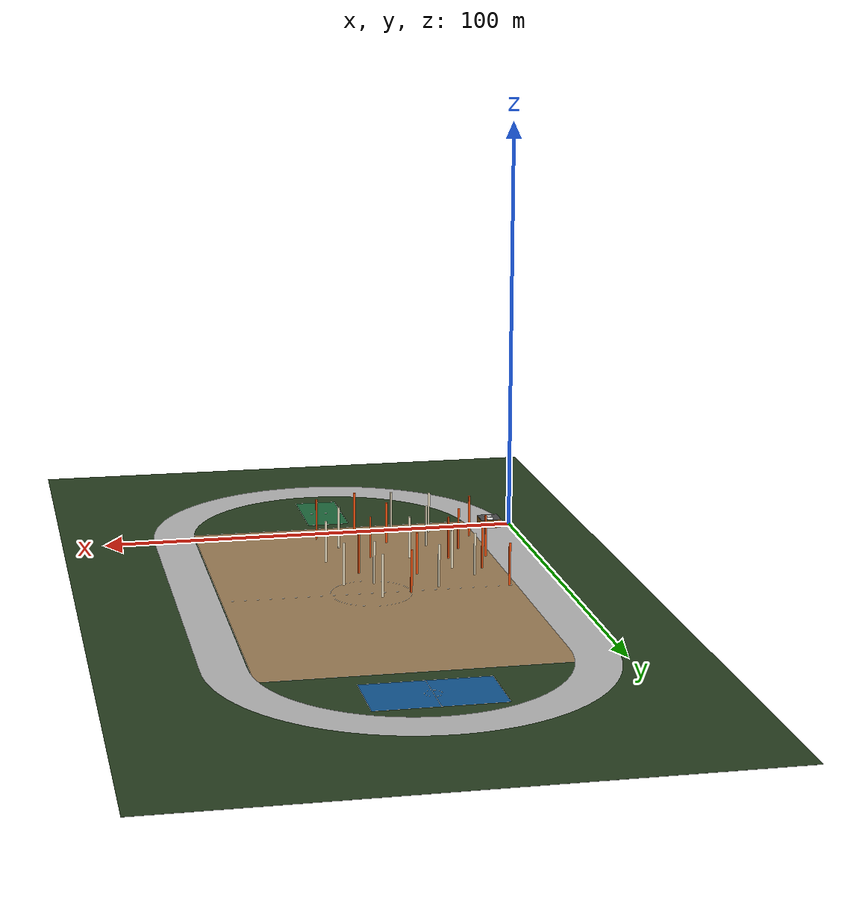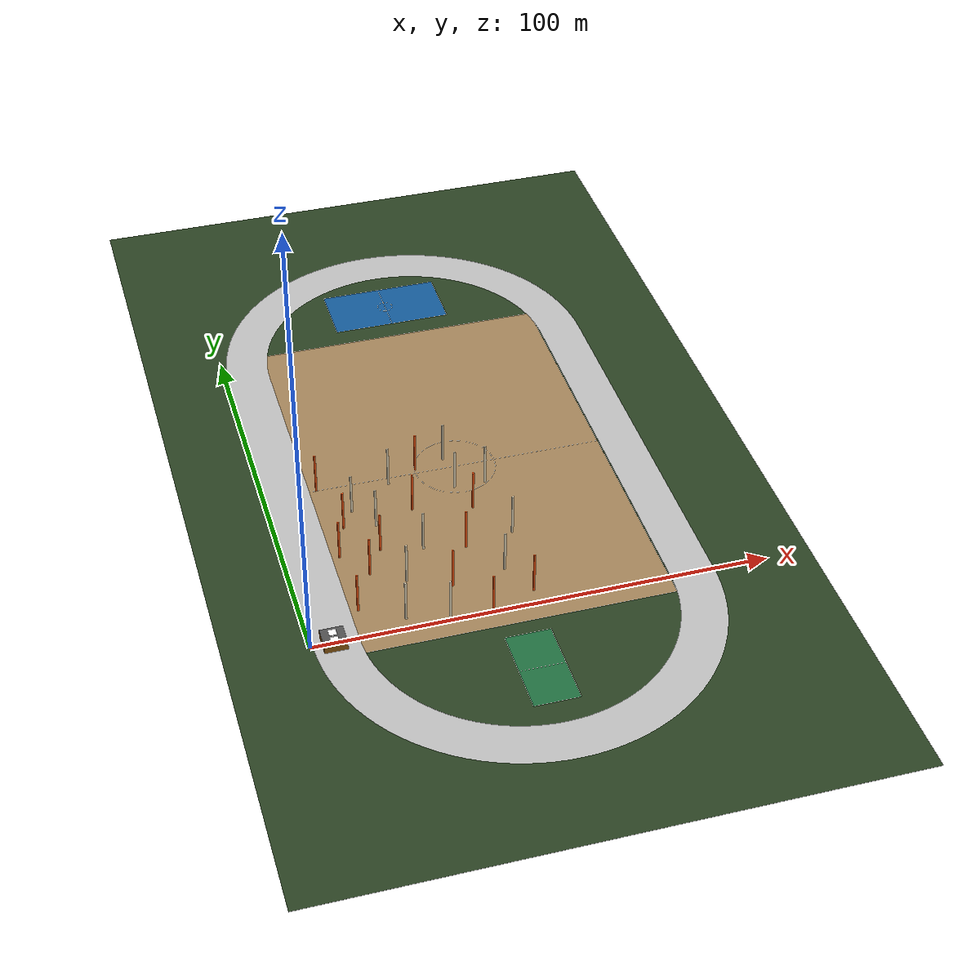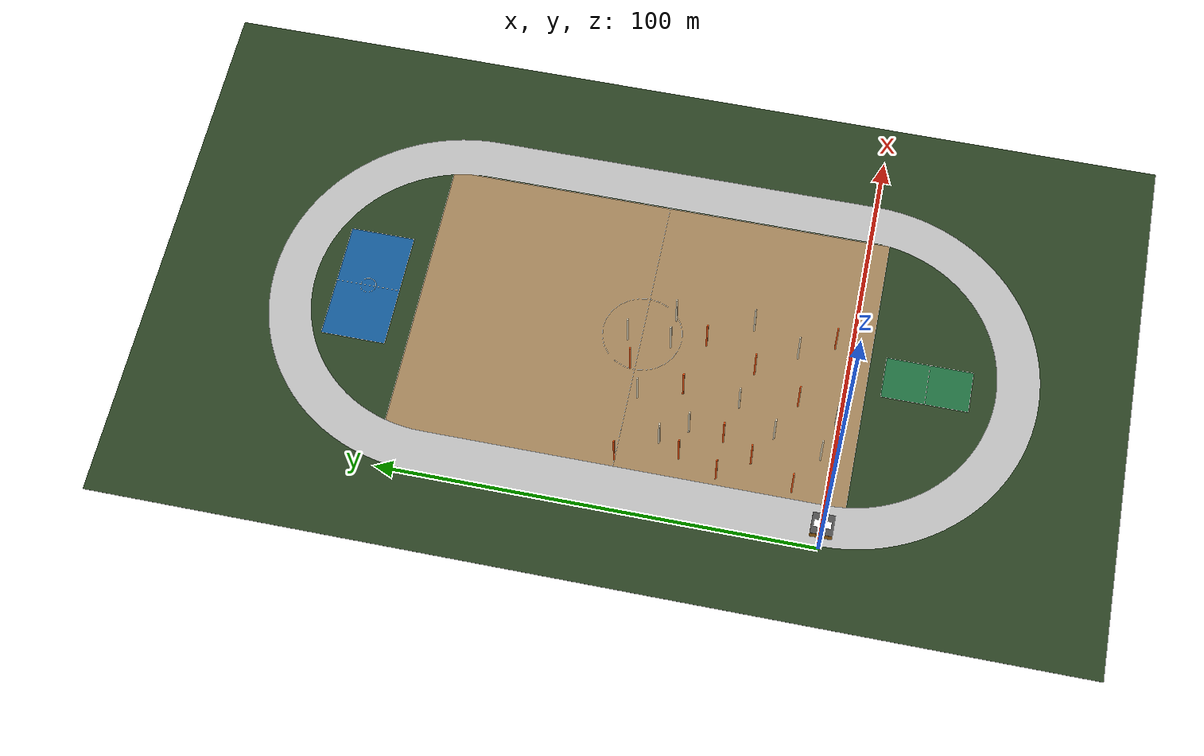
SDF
<?xml version="1.0" encoding="UTF-8"?>
<sdf version="1.9">
  <!-- Real-scale Cheongju University Main Complex Stadium only. -->
  <world name="drone_cju">
    <magnetic_field>6.0e-6 2.3e-5 -4.2e-5</magnetic_field>
    <atmosphere type="adiabatic"/>

    <plugin filename="gz-sim-physics-system" name="gz::sim::systems::Physics"/>
    <plugin filename="gz-sim-user-commands-system" name="gz::sim::systems::UserCommands"/>
    <plugin filename="gz-sim-scene-broadcaster-system" name="gz::sim::systems::SceneBroadcaster"/>
    <plugin filename="gz-sim-contact-system" name="gz::sim::systems::Contact"/>
    <plugin filename="gz-sim-sensors-system" name="gz::sim::systems::Sensors">
      <render_engine>ogre2</render_engine>
    </plugin>
    <plugin filename="gz-sim-imu-system" name="gz::sim::systems::Imu"/>
    <plugin filename="gz-sim-air-pressure-system" name="gz::sim::systems::AirPressure"/>
    <plugin filename="gz-sim-magnetometer-system" name="gz::sim::systems::Magnetometer"/>
    <plugin filename="gz-sim-navsat-system" name="gz::sim::systems::NavSat"/>

    <physics name="2ms" type="ignored">
      <max_step_size>0.002</max_step_size>
      <real_time_factor>1.0</real_time_factor>
      <real_time_update_rate>500</real_time_update_rate>
    </physics>
    <gravity>0 0 -9.8066</gravity>

    <scene>
      <ambient>0.58 0.60 0.62 1</ambient>
      <background>0.62 0.75 0.88 1</background>
      <grid>false</grid>
      <origin_visual>false</origin_visual>
      <sky/>
    </scene>
    <light type="directional" name="sun">
      <pose>100 100 300 0 0 0</pose>
      <diffuse>0.90 0.88 0.82 1</diffuse>
      <specular>0.10 0.10 0.10 1</specular>
      <direction>-0.35 0.25 -0.90</direction>
      <cast_shadows>true</cast_shadows>
    </light>

    <gui fullscreen="0">
      <plugin filename="MinimalScene" name="3D View">
        <gz-gui>
          <title>DRONE CJU - Cheongju University Stadium</title>
          <property type="bool" key="showTitleBar">false</property>
          <property type="string" key="state">docked</property>
        </gz-gui>
        <engine>ogre2</engine>
        <scene>scene</scene>
        <ambient_light>0.58 0.60 0.62</ambient_light>
        <background_color>0.62 0.75 0.88</background_color>
        <camera_pose>110 -20 120 0 0.60 2.10</camera_pose>
        <camera_clip><near>0.2</near><far>1000</far></camera_clip>
      </plugin>
      <plugin filename="GzSceneManager" name="Scene Manager"/>
      <plugin filename="InteractiveViewControl" name="Interactive view control"/>
      <plugin filename="CameraTracking" name="Camera Tracking"/>
      <plugin filename="EntityTree" name="Entity tree"/>
      <plugin filename="WorldControl" name="World control">
        <play_pause>true</play_pause><step>true</step><start_paused>true</start_paused>
      </plugin>
      <plugin filename="WorldStats" name="World stats">
        <sim_time>true</sim_time><real_time_factor>true</real_time_factor>
      </plugin>
    </gui>

    <spherical_coordinates>
      <surface_model>EARTH_WGS84</surface_model>
      <!-- World ENU georeference; the integer stadium map frame is declared
           separately below at the selected OSM endpoint. -->
      <latitude_deg>36.6533752165</latitude_deg>
      <longitude_deg>127.4955858675</longitude_deg>
      <elevation>74.0</elevation>
      <heading_deg>0</heading_deg>
    </spherical_coordinates>

    <!-- Positive mission coordinates from the integer south-west staging
         origin; +x is east-ish and +y north-ish. -->
    <frame name="stadium_endpoint">
      <pose>-10.639652792208 64.993290731978 0 0 0 0.110080031259</pose>
    </frame>
    <frame name="stadium_center">
      <pose relative_to="stadium_endpoint">44 46 0 0 0 0</pose>
    </frame>

    <!-- One low grass/earth pad fills gaps between the requested facilities. -->
    <model name="stadium_ground">
      <static>true</static>
      <pose relative_to="stadium_endpoint">0 0 0 0 0 0</pose>
      <link name="ground">
        <collision name="collision">
          <pose>46 49 -1 0 0 0</pose>
          <geometry><box><size>128 226 2</size></box></geometry>
        </collision>
        <visual name="stadium_ground_surface">
          <pose>46 49 -0.03 0 0 0</pose>
          <cast_shadows>false</cast_shadows>
          <geometry><box><size>128 226 0.04</size></box></geometry>
          <material>
            <ambient>0.16 0.25 0.13 1</ambient>
            <diffuse>0.16 0.25 0.13 1</diffuse>
            <specular>0.02 0.02 0.02 1</specular>
          </material>
        </visual>
      </link>
    </model>

    <include>
      <uri>model://drone_cju_track_stadium</uri>
      <name>drone_cju_track_stadium</name>
      <pose relative_to="stadium_endpoint">0 0 0 0 0 0</pose>
    </include>
    <include>
      <uri>model://drone_cju_track_running_track</uri>
      <name>drone_cju_track_running_track</name>
      <pose relative_to="stadium_endpoint">0 0 0 0 0 0</pose>
    </include>

    <!-- Twenty-five fixed integer centres in x=0..50, y=0..51. -->
    <model name="mission_obstacles">
      <static>true</static>
      <pose relative_to="stadium_endpoint">0 0 0 0 0 0</pose>
      <link name="barriers">
        <collision name="barrier_1_collision"><pose>33 10 5 0 0 0</pose><geometry><box><size>0.45 0.35 10</size></box></geometry></collision>
        <collision name="barrier_2_collision"><pose>18 39 5 0 0 0</pose><geometry><box><size>0.45 0.35 10</size></box></geometry></collision>
        <collision name="barrier_3_collision"><pose>21 25 5 0 0 0</pose><geometry><box><size>0.45 0.35 10</size></box></geometry></collision>
        <collision name="barrier_4_collision"><pose>49 41 5 0 0 0</pose><geometry><box><size>0.45 0.35 10</size></box></geometry></collision>
        <collision name="barrier_5_collision"><pose>31 36 5 0 0 0</pose><geometry><box><size>0.45 0.35 10</size></box></geometry></collision>
        <collision name="barrier_6_collision"><pose>45 12 5 0 0 0</pose><geometry><box><size>0.45 0.35 10</size></box></geometry></collision>
        <collision name="barrier_7_collision"><pose>39 21 5 0 0 0</pose><geometry><box><size>0.45 0.35 10</size></box></geometry></collision>
        <collision name="barrier_8_collision"><pose>42 51 5 0 0 0</pose><geometry><box><size>0.45 0.35 10</size></box></geometry></collision>
        <collision name="barrier_9_collision"><pose>17 18 5 0 0 0</pose><geometry><box><size>0.45 0.35 10</size></box></geometry></collision>
        <collision name="barrier_10_collision"><pose>22 33 5 0 0 0</pose><geometry><box><size>0.45 0.35 10</size></box></geometry></collision>
        <collision name="barrier_11_collision"><pose>44 33 5 0 0 0</pose><geometry><box><size>0.45 0.35 10</size></box></geometry></collision>
        <collision name="barrier_12_collision"><pose>24 14 5 0 0 0</pose><geometry><box><size>0.45 0.35 10</size></box></geometry></collision>
        <collision name="barrier_13_collision"><pose>39 0 5 0 0 0</pose><geometry><box><size>0.45 0.35 10</size></box></geometry></collision>
        <collision name="barrier_14_collision"><pose>30 23 5 0 0 0</pose><geometry><box><size>0.45 0.35 10</size></box></geometry></collision>
        <collision name="barrier_15_collision"><pose>49 4 5 0 0 0</pose><geometry><box><size>0.45 0.35 10</size></box></geometry></collision>
        <collision name="barrier_16_collision"><pose>21 3 5 0 0 0</pose><geometry><box><size>0.45 0.35 10</size></box></geometry></collision>
        <collision name="barrier_17_collision"><pose>15 34 5 0 0 0</pose><geometry><box><size>0.45 0.35 10</size></box></geometry></collision>
        <collision name="barrier_18_collision"><pose>42 41 5 0 0 0</pose><geometry><box><size>0.45 0.35 10</size></box></geometry></collision>
        <collision name="barrier_19_collision"><pose>35 49 5 0 0 0</pose><geometry><box><size>0.45 0.35 10</size></box></geometry></collision>
        <collision name="barrier_20_collision"><pose>28 46 5 0 0 0</pose><geometry><box><size>0.45 0.35 10</size></box></geometry></collision>
        <collision name="barrier_21_collision"><pose>12 48 5 0 0 0</pose><geometry><box><size>0.45 0.35 10</size></box></geometry></collision>
        <collision name="barrier_22_collision"><pose>50 23 5 0 0 0</pose><geometry><box><size>0.45 0.35 10</size></box></geometry></collision>
        <collision name="barrier_23_collision"><pose>12 8 5 0 0 0</pose><geometry><box><size>0.45 0.35 10</size></box></geometry></collision>
        <collision name="barrier_24_collision"><pose>30 1 5 0 0 0</pose><geometry><box><size>0.45 0.35 10</size></box></geometry></collision>
        <collision name="barrier_25_collision"><pose>12 25 5 0 0 0</pose><geometry><box><size>0.45 0.35 10</size></box></geometry></collision>
        <visual name="barrier_1"><pose>33 10 5 0 0 0</pose><geometry><box><size>0.45 0.35 10</size></box></geometry><material><ambient>0.95 0.32 0.05 1</ambient><diffuse>0.95 0.32 0.05 1</diffuse></material></visual>
        <visual name="barrier_2"><pose>18 39 5 0 0 0</pose><geometry><box><size>0.45 0.35 10</size></box></geometry><material><ambient>0.95 0.90 0.78 1</ambient><diffuse>0.95 0.90 0.78 1</diffuse></material></visual>
        <visual name="barrier_3"><pose>21 25 5 0 0 0</pose><geometry><box><size>0.45 0.35 10</size></box></geometry><material><ambient>0.95 0.32 0.05 1</ambient><diffuse>0.95 0.32 0.05 1</diffuse></material></visual>
        <visual name="barrier_4"><pose>49 41 5 0 0 0</pose><geometry><box><size>0.45 0.35 10</size></box></geometry><material><ambient>0.95 0.90 0.78 1</ambient><diffuse>0.95 0.90 0.78 1</diffuse></material></visual>
        <visual name="barrier_5"><pose>31 36 5 0 0 0</pose><geometry><box><size>0.45 0.35 10</size></box></geometry><material><ambient>0.95 0.32 0.05 1</ambient><diffuse>0.95 0.32 0.05 1</diffuse></material></visual>
        <visual name="barrier_6"><pose>45 12 5 0 0 0</pose><geometry><box><size>0.45 0.35 10</size></box></geometry><material><ambient>0.95 0.90 0.78 1</ambient><diffuse>0.95 0.90 0.78 1</diffuse></material></visual>
        <visual name="barrier_7"><pose>39 21 5 0 0 0</pose><geometry><box><size>0.45 0.35 10</size></box></geometry><material><ambient>0.95 0.32 0.05 1</ambient><diffuse>0.95 0.32 0.05 1</diffuse></material></visual>
        <visual name="barrier_8"><pose>42 51 5 0 0 0</pose><geometry><box><size>0.45 0.35 10</size></box></geometry><material><ambient>0.95 0.90 0.78 1</ambient><diffuse>0.95 0.90 0.78 1</diffuse></material></visual>
        <visual name="barrier_9"><pose>17 18 5 0 0 0</pose><geometry><box><size>0.45 0.35 10</size></box></geometry><material><ambient>0.95 0.32 0.05 1</ambient><diffuse>0.95 0.32 0.05 1</diffuse></material></visual>
        <visual name="barrier_10"><pose>22 33 5 0 0 0</pose><geometry><box><size>0.45 0.35 10</size></box></geometry><material><ambient>0.95 0.90 0.78 1</ambient><diffuse>0.95 0.90 0.78 1</diffuse></material></visual>
        <visual name="barrier_11"><pose>44 33 5 0 0 0</pose><geometry><box><size>0.45 0.35 10</size></box></geometry><material><ambient>0.95 0.32 0.05 1</ambient><diffuse>0.95 0.32 0.05 1</diffuse></material></visual>
        <visual name="barrier_12"><pose>24 14 5 0 0 0</pose><geometry><box><size>0.45 0.35 10</size></box></geometry><material><ambient>0.95 0.90 0.78 1</ambient><diffuse>0.95 0.90 0.78 1</diffuse></material></visual>
        <visual name="barrier_13"><pose>39 0 5 0 0 0</pose><geometry><box><size>0.45 0.35 10</size></box></geometry><material><ambient>0.95 0.32 0.05 1</ambient><diffuse>0.95 0.32 0.05 1</diffuse></material></visual>
        <visual name="barrier_14"><pose>30 23 5 0 0 0</pose><geometry><box><size>0.45 0.35 10</size></box></geometry><material><ambient>0.95 0.90 0.78 1</ambient><diffuse>0.95 0.90 0.78 1</diffuse></material></visual>
        <visual name="barrier_15"><pose>49 4 5 0 0 0</pose><geometry><box><size>0.45 0.35 10</size></box></geometry><material><ambient>0.95 0.32 0.05 1</ambient><diffuse>0.95 0.32 0.05 1</diffuse></material></visual>
        <visual name="barrier_16"><pose>21 3 5 0 0 0</pose><geometry><box><size>0.45 0.35 10</size></box></geometry><material><ambient>0.95 0.90 0.78 1</ambient><diffuse>0.95 0.90 0.78 1</diffuse></material></visual>
        <visual name="barrier_17"><pose>15 34 5 0 0 0</pose><geometry><box><size>0.45 0.35 10</size></box></geometry><material><ambient>0.95 0.32 0.05 1</ambient><diffuse>0.95 0.32 0.05 1</diffuse></material></visual>
        <visual name="barrier_18"><pose>42 41 5 0 0 0</pose><geometry><box><size>0.45 0.35 10</size></box></geometry><material><ambient>0.95 0.90 0.78 1</ambient><diffuse>0.95 0.90 0.78 1</diffuse></material></visual>
        <visual name="barrier_19"><pose>35 49 5 0 0 0</pose><geometry><box><size>0.45 0.35 10</size></box></geometry><material><ambient>0.95 0.32 0.05 1</ambient><diffuse>0.95 0.32 0.05 1</diffuse></material></visual>
        <visual name="barrier_20"><pose>28 46 5 0 0 0</pose><geometry><box><size>0.45 0.35 10</size></box></geometry><material><ambient>0.95 0.90 0.78 1</ambient><diffuse>0.95 0.90 0.78 1</diffuse></material></visual>
        <visual name="barrier_21"><pose>12 48 5 0 0 0</pose><geometry><box><size>0.45 0.35 10</size></box></geometry><material><ambient>0.95 0.32 0.05 1</ambient><diffuse>0.95 0.32 0.05 1</diffuse></material></visual>
        <visual name="barrier_22"><pose>50 23 5 0 0 0</pose><geometry><box><size>0.45 0.35 10</size></box></geometry><material><ambient>0.95 0.90 0.78 1</ambient><diffuse>0.95 0.90 0.78 1</diffuse></material></visual>
        <visual name="barrier_23"><pose>12 8 5 0 0 0</pose><geometry><box><size>0.45 0.35 10</size></box></geometry><material><ambient>0.95 0.32 0.05 1</ambient><diffuse>0.95 0.32 0.05 1</diffuse></material></visual>
        <visual name="barrier_24"><pose>30 1 5 0 0 0</pose><geometry><box><size>0.45 0.35 10</size></box></geometry><material><ambient>0.95 0.90 0.78 1</ambient><diffuse>0.95 0.90 0.78 1</diffuse></material></visual>
        <visual name="barrier_25"><pose>12 25 5 0 0 0</pose><geometry><box><size>0.45 0.35 10</size></box></geometry><material><ambient>0.95 0.32 0.05 1</ambient><diffuse>0.95 0.32 0.05 1</diffuse></material></visual>
      </link>
    </model>

    <frame name="drone_spawn"><pose relative_to="stadium_endpoint">5 0 2.051 0 0 1.570796326795</pose></frame>
    <frame name="trailer_spawn"><pose relative_to="stadium_endpoint">5 0 0 0 0 1.570796326795</pose></frame>
    <include>
      <uri>model://moving_platform_aruco_velocity</uri>
      <name>trailer</name>
      <pose relative_to="stadium_endpoint">5 0 0 0 0 1.570796326795</pose>
    </include>

    <!-- PX4 SITL dynamically creates the x500 on the trailer deck. -->
  </world>
</sdf>

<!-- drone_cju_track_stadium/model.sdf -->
<sdf version="1.9">
  <!-- Generated requested facilities only; markings are visual-only. -->
  <model name="drone_cju_track_stadium">
    <static>true</static>
    <link name="stadium_link">
      <visual name="stadium_field">
        <pose>44.0000 48.0000 0.0000 0 0 0.000000</pose>
        <cast_shadows>false</cast_shadows>
        <geometry><box><size>68.0000 105.0000 0.0200</size></box></geometry>
        <material>
          <ambient>0.62 0.5 0.34 1.0</ambient>
          <diffuse>0.62 0.5 0.34 1.0</diffuse>
          <specular>0.04 0.04 0.04 1</specular>
        </material>
      </visual>
      <visual name="basketball_court">
        <pose>44.0000 113.0000 0.0000 0 0 0.000000</pose>
        <cast_shadows>false</cast_shadows>
        <geometry><box><size>28.0000 15.0000 0.0200</size></box></geometry>
        <material>
          <ambient>0.07 0.34 0.58 1.0</ambient>
          <diffuse>0.07 0.34 0.58 1.0</diffuse>
          <specular>0.04 0.04 0.04 1</specular>
        </material>
      </visual>
      <visual name="jokgu_court">
        <pose>44.0000 -18.0000 0.0000 0 0 0.000000</pose>
        <cast_shadows>false</cast_shadows>
        <geometry><box><size>10.0000 20.0000 0.0200</size></box></geometry>
        <material>
          <ambient>0.12 0.42 0.24 1.0</ambient>
          <diffuse>0.12 0.42 0.24 1.0</diffuse>
          <specular>0.04 0.04 0.04 1</specular>
        </material>
      </visual>
      <visual name="stadium_field_line_east">
        <pose>78.0000 48.0000 0.0120 0 0 0.000000</pose>
        <cast_shadows>false</cast_shadows>
        <geometry><box><size>0.0800 105.0000 0.0040</size></box></geometry>
        <material>
          <ambient>0.96 0.96 0.93 1.0</ambient>
          <diffuse>0.96 0.96 0.93 1.0</diffuse>
          <specular>0.04 0.04 0.04 1</specular>
        </material>
      </visual>
      <visual name="stadium_field_line_west">
        <pose>10.0000 48.0000 0.0120 0 0 0.000000</pose>
        <cast_shadows>false</cast_shadows>
        <geometry><box><size>0.0800 105.0000 0.0040</size></box></geometry>
        <material>
          <ambient>0.96 0.96 0.93 1.0</ambient>
          <diffuse>0.96 0.96 0.93 1.0</diffuse>
          <specular>0.04 0.04 0.04 1</specular>
        </material>
      </visual>
      <visual name="stadium_field_line_north">
        <pose>44.0000 100.5000 0.0120 0 0 0.000000</pose>
        <cast_shadows>false</cast_shadows>
        <geometry><box><size>68.0000 0.0800 0.0040</size></box></geometry>
        <material>
          <ambient>0.96 0.96 0.93 1.0</ambient>
          <diffuse>0.96 0.96 0.93 1.0</diffuse>
          <specular>0.04 0.04 0.04 1</specular>
        </material>
      </visual>
      <visual name="stadium_field_line_south">
        <pose>44.0000 -4.5000 0.0120 0 0 0.000000</pose>
        <cast_shadows>false</cast_shadows>
        <geometry><box><size>68.0000 0.0800 0.0040</size></box></geometry>
        <material>
          <ambient>0.96 0.96 0.93 1.0</ambient>
          <diffuse>0.96 0.96 0.93 1.0</diffuse>
          <specular>0.04 0.04 0.04 1</specular>
        </material>
      </visual>
      <visual name="stadium_field_line_halfway">
        <pose>44.0000 48.0000 0.0120 0 0 0.000000</pose>
        <cast_shadows>false</cast_shadows>
        <geometry><box><size>68.0000 0.0800 0.0040</size></box></geometry>
        <material>
          <ambient>0.96 0.96 0.93 1.0</ambient>
          <diffuse>0.96 0.96 0.93 1.0</diffuse>
          <specular>0.04 0.04 0.04 1</specular>
        </material>
      </visual>
      <visual name="stadium_field_line_circle_0">
        <pose>53.0717 49.1943 0.0120 0 0 1.701696</pose>
        <cast_shadows>false</cast_shadows>
        <geometry><box><size>2.4603 0.0800 0.0040</size></box></geometry>
        <material>
          <ambient>0.96 0.96 0.93 1.0</ambient>
          <diffuse>0.96 0.96 0.93 1.0</diffuse>
          <specular>0.04 0.04 0.04 1</specular>
        </material>
      </visual>
      <visual name="stadium_field_line_circle_1">
        <pose>52.4535 51.5016 0.0120 0 0 1.963495</pose>
        <cast_shadows>false</cast_shadows>
        <geometry><box><size>2.4603 0.0800 0.0040</size></box></geometry>
        <material>
          <ambient>0.96 0.96 0.93 1.0</ambient>
          <diffuse>0.96 0.96 0.93 1.0</diffuse>
          <specular>0.04 0.04 0.04 1</specular>
        </material>
      </visual>
      <visual name="stadium_field_line_circle_2">
        <pose>51.2592 53.5702 0.0120 0 0 2.225295</pose>
        <cast_shadows>false</cast_shadows>
        <geometry><box><size>2.4603 0.0800 0.0040</size></box></geometry>
        <material>
          <ambient>0.96 0.96 0.93 1.0</ambient>
          <diffuse>0.96 0.96 0.93 1.0</diffuse>
          <specular>0.04 0.04 0.04 1</specular>
        </material>
      </visual>
      <visual name="stadium_field_line_circle_3">
        <pose>49.5702 55.2592 0.0120 0 0 2.487094</pose>
        <cast_shadows>false</cast_shadows>
        <geometry><box><size>2.4603 0.0800 0.0040</size></box></geometry>
        <material>
          <ambient>0.96 0.96 0.93 1.0</ambient>
          <diffuse>0.96 0.96 0.93 1.0</diffuse>
          <specular>0.04 0.04 0.04 1</specular>
        </material>
      </visual>
      <visual name="stadium_field_line_circle_4">
        <pose>47.5016 56.4535 0.0120 0 0 2.748894</pose>
        <cast_shadows>false</cast_shadows>
        <geometry><box><size>2.4603 0.0800 0.0040</size></box></geometry>
        <material>
          <ambient>0.96 0.96 0.93 1.0</ambient>
          <diffuse>0.96 0.96 0.93 1.0</diffuse>
          <specular>0.04 0.04 0.04 1</specular>
        </material>
      </visual>
      <visual name="stadium_field_line_circle_5">
        <pose>45.1943 57.0717 0.0120 0 0 3.010693</pose>
        <cast_shadows>false</cast_shadows>
        <geometry><box><size>2.4603 0.0800 0.0040</size></box></geometry>
        <material>
          <ambient>0.96 0.96 0.93 1.0</ambient>
          <diffuse>0.96 0.96 0.93 1.0</diffuse>
          <specular>0.04 0.04 0.04 1</specular>
        </material>
      </visual>
      <visual name="stadium_field_line_circle_6">
        <pose>42.8057 57.0717 0.0120 0 0 3.272492</pose>
        <cast_shadows>false</cast_shadows>
        <geometry><box><size>2.4603 0.0800 0.0040</size></box></geometry>
        <material>
          <ambient>0.96 0.96 0.93 1.0</ambient>
          <diffuse>0.96 0.96 0.93 1.0</diffuse>
          <specular>0.04 0.04 0.04 1</specular>
        </material>
      </visual>
      <visual name="stadium_field_line_circle_7">
        <pose>40.4984 56.4535 0.0120 0 0 3.534292</pose>
        <cast_shadows>false</cast_shadows>
        <geometry><box><size>2.4603 0.0800 0.0040</size></box></geometry>
        <material>
          <ambient>0.96 0.96 0.93 1.0</ambient>
          <diffuse>0.96 0.96 0.93 1.0</diffuse>
          <specular>0.04 0.04 0.04 1</specular>
        </material>
      </visual>
      <visual name="stadium_field_line_circle_8">
        <pose>38.4298 55.2592 0.0120 0 0 3.796091</pose>
        <cast_shadows>false</cast_shadows>
        <geometry><box><size>2.4603 0.0800 0.0040</size></box></geometry>
        <material>
          <ambient>0.96 0.96 0.93 1.0</ambient>
          <diffuse>0.96 0.96 0.93 1.0</diffuse>
          <specular>0.04 0.04 0.04 1</specular>
        </material>
      </visual>
      <visual name="stadium_field_line_circle_9">
        <pose>36.7408 53.5702 0.0120 0 0 4.057891</pose>
        <cast_shadows>false</cast_shadows>
        <geometry><box><size>2.4603 0.0800 0.0040</size></box></geometry>
        <material>
          <ambient>0.96 0.96 0.93 1.0</ambient>
          <diffuse>0.96 0.96 0.93 1.0</diffuse>
          <specular>0.04 0.04 0.04 1</specular>
        </material>
      </visual>
      <visual name="stadium_field_line_circle_10">
        <pose>35.5465 51.5016 0.0120 0 0 4.319690</pose>
        <cast_shadows>false</cast_shadows>
        <geometry><box><size>2.4603 0.0800 0.0040</size></box></geometry>
        <material>
          <ambient>0.96 0.96 0.93 1.0</ambient>
          <diffuse>0.96 0.96 0.93 1.0</diffuse>
          <specular>0.04 0.04 0.04 1</specular>
        </material>
      </visual>
      <visual name="stadium_field_line_circle_11">
        <pose>34.9283 49.1943 0.0120 0 0 4.581489</pose>
        <cast_shadows>false</cast_shadows>
        <geometry><box><size>2.4603 0.0800 0.0040</size></box></geometry>
        <material>
          <ambient>0.96 0.96 0.93 1.0</ambient>
          <diffuse>0.96 0.96 0.93 1.0</diffuse>
          <specular>0.04 0.04 0.04 1</specular>
        </material>
      </visual>
      <visual name="stadium_field_line_circle_12">
        <pose>34.9283 46.8057 0.0120 0 0 4.843289</pose>
        <cast_shadows>false</cast_shadows>
        <geometry><box><size>2.4603 0.0800 0.0040</size></box></geometry>
        <material>
          <ambient>0.96 0.96 0.93 1.0</ambient>
          <diffuse>0.96 0.96 0.93 1.0</diffuse>
          <specular>0.04 0.04 0.04 1</specular>
        </material>
      </visual>
      <visual name="stadium_field_line_circle_13">
        <pose>35.5465 44.4984 0.0120 0 0 5.105088</pose>
        <cast_shadows>false</cast_shadows>
        <geometry><box><size>2.4603 0.0800 0.0040</size></box></geometry>
        <material>
          <ambient>0.96 0.96 0.93 1.0</ambient>
          <diffuse>0.96 0.96 0.93 1.0</diffuse>
          <specular>0.04 0.04 0.04 1</specular>
        </material>
      </visual>
      <visual name="stadium_field_line_circle_14">
        <pose>36.7408 42.4298 0.0120 0 0 5.366887</pose>
        <cast_shadows>false</cast_shadows>
        <geometry><box><size>2.4603 0.0800 0.0040</size></box></geometry>
        <material>
          <ambient>0.96 0.96 0.93 1.0</ambient>
          <diffuse>0.96 0.96 0.93 1.0</diffuse>
          <specular>0.04 0.04 0.04 1</specular>
        </material>
      </visual>
      <visual name="stadium_field_line_circle_15">
        <pose>38.4298 40.7408 0.0120 0 0 5.628687</pose>
        <cast_shadows>false</cast_shadows>
        <geometry><box><size>2.4603 0.0800 0.0040</size></box></geometry>
        <material>
          <ambient>0.96 0.96 0.93 1.0</ambient>
          <diffuse>0.96 0.96 0.93 1.0</diffuse>
          <specular>0.04 0.04 0.04 1</specular>
        </material>
      </visual>
      <visual name="stadium_field_line_circle_16">
        <pose>40.4984 39.5465 0.0120 0 0 5.890486</pose>
        <cast_shadows>false</cast_shadows>
        <geometry><box><size>2.4603 0.0800 0.0040</size></box></geometry>
        <material>
          <ambient>0.96 0.96 0.93 1.0</ambient>
          <diffuse>0.96 0.96 0.93 1.0</diffuse>
          <specular>0.04 0.04 0.04 1</specular>
        </material>
      </visual>
      <visual name="stadium_field_line_circle_17">
        <pose>42.8057 38.9283 0.0120 0 0 6.152286</pose>
        <cast_shadows>false</cast_shadows>
        <geometry><box><size>2.4603 0.0800 0.0040</size></box></geometry>
        <material>
          <ambient>0.96 0.96 0.93 1.0</ambient>
          <diffuse>0.96 0.96 0.93 1.0</diffuse>
          <specular>0.04 0.04 0.04 1</specular>
        </material>
      </visual>
      <visual name="stadium_field_line_circle_18">
        <pose>45.1943 38.9283 0.0120 0 0 6.414085</pose>
        <cast_shadows>false</cast_shadows>
        <geometry><box><size>2.4603 0.0800 0.0040</size></box></geometry>
        <material>
          <ambient>0.96 0.96 0.93 1.0</ambient>
          <diffuse>0.96 0.96 0.93 1.0</diffuse>
          <specular>0.04 0.04 0.04 1</specular>
        </material>
      </visual>
      <visual name="stadium_field_line_circle_19">
        <pose>47.5016 39.5465 0.0120 0 0 6.675884</pose>
        <cast_shadows>false</cast_shadows>
        <geometry><box><size>2.4603 0.0800 0.0040</size></box></geometry>
        <material>
          <ambient>0.96 0.96 0.93 1.0</ambient>
          <diffuse>0.96 0.96 0.93 1.0</diffuse>
          <specular>0.04 0.04 0.04 1</specular>
        </material>
      </visual>
      <visual name="stadium_field_line_circle_20">
        <pose>49.5702 40.7408 0.0120 0 0 6.937684</pose>
        <cast_shadows>false</cast_shadows>
        <geometry><box><size>2.4603 0.0800 0.0040</size></box></geometry>
        <material>
          <ambient>0.96 0.96 0.93 1.0</ambient>
          <diffuse>0.96 0.96 0.93 1.0</diffuse>
          <specular>0.04 0.04 0.04 1</specular>
        </material>
      </visual>
      <visual name="stadium_field_line_circle_21">
        <pose>51.2592 42.4298 0.0120 0 0 7.199483</pose>
        <cast_shadows>false</cast_shadows>
        <geometry><box><size>2.4603 0.0800 0.0040</size></box></geometry>
        <material>
          <ambient>0.96 0.96 0.93 1.0</ambient>
          <diffuse>0.96 0.96 0.93 1.0</diffuse>
          <specular>0.04 0.04 0.04 1</specular>
        </material>
      </visual>
      <visual name="stadium_field_line_circle_22">
        <pose>52.4535 44.4984 0.0120 0 0 7.461283</pose>
        <cast_shadows>false</cast_shadows>
        <geometry><box><size>2.4603 0.0800 0.0040</size></box></geometry>
        <material>
          <ambient>0.96 0.96 0.93 1.0</ambient>
          <diffuse>0.96 0.96 0.93 1.0</diffuse>
          <specular>0.04 0.04 0.04 1</specular>
        </material>
      </visual>
      <visual name="stadium_field_line_circle_23">
        <pose>53.0717 46.8057 0.0120 0 0 7.723082</pose>
        <cast_shadows>false</cast_shadows>
        <geometry><box><size>2.4603 0.0800 0.0040</size></box></geometry>
        <material>
          <ambient>0.96 0.96 0.93 1.0</ambient>
          <diffuse>0.96 0.96 0.93 1.0</diffuse>
          <specular>0.04 0.04 0.04 1</specular>
        </material>
      </visual>
      <visual name="basketball_court_line_east">
        <pose>58.0000 113.0000 0.0120 0 0 0.000000</pose>
        <cast_shadows>false</cast_shadows>
        <geometry><box><size>0.0800 15.0000 0.0040</size></box></geometry>
        <material>
          <ambient>0.96 0.96 0.93 1.0</ambient>
          <diffuse>0.96 0.96 0.93 1.0</diffuse>
          <specular>0.04 0.04 0.04 1</specular>
        </material>
      </visual>
      <visual name="basketball_court_line_west">
        <pose>30.0000 113.0000 0.0120 0 0 0.000000</pose>
        <cast_shadows>false</cast_shadows>
        <geometry><box><size>0.0800 15.0000 0.0040</size></box></geometry>
        <material>
          <ambient>0.96 0.96 0.93 1.0</ambient>
          <diffuse>0.96 0.96 0.93 1.0</diffuse>
          <specular>0.04 0.04 0.04 1</specular>
        </material>
      </visual>
      <visual name="basketball_court_line_north">
        <pose>44.0000 120.5000 0.0120 0 0 0.000000</pose>
        <cast_shadows>false</cast_shadows>
        <geometry><box><size>28.0000 0.0800 0.0040</size></box></geometry>
        <material>
          <ambient>0.96 0.96 0.93 1.0</ambient>
          <diffuse>0.96 0.96 0.93 1.0</diffuse>
          <specular>0.04 0.04 0.04 1</specular>
        </material>
      </visual>
      <visual name="basketball_court_line_south">
        <pose>44.0000 105.5000 0.0120 0 0 0.000000</pose>
        <cast_shadows>false</cast_shadows>
        <geometry><box><size>28.0000 0.0800 0.0040</size></box></geometry>
        <material>
          <ambient>0.96 0.96 0.93 1.0</ambient>
          <diffuse>0.96 0.96 0.93 1.0</diffuse>
          <specular>0.04 0.04 0.04 1</specular>
        </material>
      </visual>
      <visual name="basketball_court_line_halfway">
        <pose>44.0000 113.0000 0.0120 0 0 0.000000</pose>
        <cast_shadows>false</cast_shadows>
        <geometry><box><size>0.0800 15.0000 0.0040</size></box></geometry>
        <material>
          <ambient>0.96 0.96 0.93 1.0</ambient>
          <diffuse>0.96 0.96 0.93 1.0</diffuse>
          <specular>0.04 0.04 0.04 1</specular>
        </material>
      </visual>
      <visual name="basketball_court_line_circle_0">
        <pose>45.7654 113.3512 0.0120 0 0 1.767146</pose>
        <cast_shadows>false</cast_shadows>
        <geometry><box><size>0.7234 0.0800 0.0040</size></box></geometry>
        <material>
          <ambient>0.96 0.96 0.93 1.0</ambient>
          <diffuse>0.96 0.96 0.93 1.0</diffuse>
          <specular>0.04 0.04 0.04 1</specular>
        </material>
      </visual>
      <visual name="basketball_court_line_circle_1">
        <pose>45.4966 114.0000 0.0120 0 0 2.159845</pose>
        <cast_shadows>false</cast_shadows>
        <geometry><box><size>0.7234 0.0800 0.0040</size></box></geometry>
        <material>
          <ambient>0.96 0.96 0.93 1.0</ambient>
          <diffuse>0.96 0.96 0.93 1.0</diffuse>
          <specular>0.04 0.04 0.04 1</specular>
        </material>
      </visual>
      <visual name="basketball_court_line_circle_2">
        <pose>45.0000 114.4966 0.0120 0 0 2.552544</pose>
        <cast_shadows>false</cast_shadows>
        <geometry><box><size>0.7234 0.0800 0.0040</size></box></geometry>
        <material>
          <ambient>0.96 0.96 0.93 1.0</ambient>
          <diffuse>0.96 0.96 0.93 1.0</diffuse>
          <specular>0.04 0.04 0.04 1</specular>
        </material>
      </visual>
      <visual name="basketball_court_line_circle_3">
        <pose>44.3512 114.7654 0.0120 0 0 2.945243</pose>
        <cast_shadows>false</cast_shadows>
        <geometry><box><size>0.7234 0.0800 0.0040</size></box></geometry>
        <material>
          <ambient>0.96 0.96 0.93 1.0</ambient>
          <diffuse>0.96 0.96 0.93 1.0</diffuse>
          <specular>0.04 0.04 0.04 1</specular>
        </material>
      </visual>
      <visual name="basketball_court_line_circle_4">
        <pose>43.6488 114.7654 0.0120 0 0 3.337942</pose>
        <cast_shadows>false</cast_shadows>
        <geometry><box><size>0.7234 0.0800 0.0040</size></box></geometry>
        <material>
          <ambient>0.96 0.96 0.93 1.0</ambient>
          <diffuse>0.96 0.96 0.93 1.0</diffuse>
          <specular>0.04 0.04 0.04 1</specular>
        </material>
      </visual>
      <visual name="basketball_court_line_circle_5">
        <pose>43.0000 114.4966 0.0120 0 0 3.730641</pose>
        <cast_shadows>false</cast_shadows>
        <geometry><box><size>0.7234 0.0800 0.0040</size></box></geometry>
        <material>
          <ambient>0.96 0.96 0.93 1.0</ambient>
          <diffuse>0.96 0.96 0.93 1.0</diffuse>
          <specular>0.04 0.04 0.04 1</specular>
        </material>
      </visual>
      <visual name="basketball_court_line_circle_6">
        <pose>42.5034 114.0000 0.0120 0 0 4.123340</pose>
        <cast_shadows>false</cast_shadows>
        <geometry><box><size>0.7234 0.0800 0.0040</size></box></geometry>
        <material>
          <ambient>0.96 0.96 0.93 1.0</ambient>
          <diffuse>0.96 0.96 0.93 1.0</diffuse>
          <specular>0.04 0.04 0.04 1</specular>
        </material>
      </visual>
      <visual name="basketball_court_line_circle_7">
        <pose>42.2346 113.3512 0.0120 0 0 4.516039</pose>
        <cast_shadows>false</cast_shadows>
        <geometry><box><size>0.7234 0.0800 0.0040</size></box></geometry>
        <material>
          <ambient>0.96 0.96 0.93 1.0</ambient>
          <diffuse>0.96 0.96 0.93 1.0</diffuse>
          <specular>0.04 0.04 0.04 1</specular>
        </material>
      </visual>
      <visual name="basketball_court_line_circle_8">
        <pose>42.2346 112.6488 0.0120 0 0 4.908739</pose>
        <cast_shadows>false</cast_shadows>
        <geometry><box><size>0.7234 0.0800 0.0040</size></box></geometry>
        <material>
          <ambient>0.96 0.96 0.93 1.0</ambient>
          <diffuse>0.96 0.96 0.93 1.0</diffuse>
          <specular>0.04 0.04 0.04 1</specular>
        </material>
      </visual>
      <visual name="basketball_court_line_circle_9">
        <pose>42.5034 112.0000 0.0120 0 0 5.301438</pose>
        <cast_shadows>false</cast_shadows>
        <geometry><box><size>0.7234 0.0800 0.0040</size></box></geometry>
        <material>
          <ambient>0.96 0.96 0.93 1.0</ambient>
          <diffuse>0.96 0.96 0.93 1.0</diffuse>
          <specular>0.04 0.04 0.04 1</specular>
        </material>
      </visual>
      <visual name="basketball_court_line_circle_10">
        <pose>43.0000 111.5034 0.0120 0 0 5.694137</pose>
        <cast_shadows>false</cast_shadows>
        <geometry><box><size>0.7234 0.0800 0.0040</size></box></geometry>
        <material>
          <ambient>0.96 0.96 0.93 1.0</ambient>
          <diffuse>0.96 0.96 0.93 1.0</diffuse>
          <specular>0.04 0.04 0.04 1</specular>
        </material>
      </visual>
      <visual name="basketball_court_line_circle_11">
        <pose>43.6488 111.2346 0.0120 0 0 6.086836</pose>
        <cast_shadows>false</cast_shadows>
        <geometry><box><size>0.7234 0.0800 0.0040</size></box></geometry>
        <material>
          <ambient>0.96 0.96 0.93 1.0</ambient>
          <diffuse>0.96 0.96 0.93 1.0</diffuse>
          <specular>0.04 0.04 0.04 1</specular>
        </material>
      </visual>
      <visual name="basketball_court_line_circle_12">
        <pose>44.3512 111.2346 0.0120 0 0 6.479535</pose>
        <cast_shadows>false</cast_shadows>
        <geometry><box><size>0.7234 0.0800 0.0040</size></box></geometry>
        <material>
          <ambient>0.96 0.96 0.93 1.0</ambient>
          <diffuse>0.96 0.96 0.93 1.0</diffuse>
          <specular>0.04 0.04 0.04 1</specular>
        </material>
      </visual>
      <visual name="basketball_court_line_circle_13">
        <pose>45.0000 111.5034 0.0120 0 0 6.872234</pose>
        <cast_shadows>false</cast_shadows>
        <geometry><box><size>0.7234 0.0800 0.0040</size></box></geometry>
        <material>
          <ambient>0.96 0.96 0.93 1.0</ambient>
          <diffuse>0.96 0.96 0.93 1.0</diffuse>
          <specular>0.04 0.04 0.04 1</specular>
        </material>
      </visual>
      <visual name="basketball_court_line_circle_14">
        <pose>45.4966 112.0000 0.0120 0 0 7.264933</pose>
        <cast_shadows>false</cast_shadows>
        <geometry><box><size>0.7234 0.0800 0.0040</size></box></geometry>
        <material>
          <ambient>0.96 0.96 0.93 1.0</ambient>
          <diffuse>0.96 0.96 0.93 1.0</diffuse>
          <specular>0.04 0.04 0.04 1</specular>
        </material>
      </visual>
      <visual name="basketball_court_line_circle_15">
        <pose>45.7654 112.6488 0.0120 0 0 7.657632</pose>
        <cast_shadows>false</cast_shadows>
        <geometry><box><size>0.7234 0.0800 0.0040</size></box></geometry>
        <material>
          <ambient>0.96 0.96 0.93 1.0</ambient>
          <diffuse>0.96 0.96 0.93 1.0</diffuse>
          <specular>0.04 0.04 0.04 1</specular>
        </material>
      </visual>
      <visual name="jokgu_court_line_east">
        <pose>49.0000 -18.0000 0.0120 0 0 0.000000</pose>
        <cast_shadows>false</cast_shadows>
        <geometry><box><size>0.0800 20.0000 0.0040</size></box></geometry>
        <material>
          <ambient>0.96 0.96 0.93 1.0</ambient>
          <diffuse>0.96 0.96 0.93 1.0</diffuse>
          <specular>0.04 0.04 0.04 1</specular>
        </material>
      </visual>
      <visual name="jokgu_court_line_west">
        <pose>39.0000 -18.0000 0.0120 0 0 0.000000</pose>
        <cast_shadows>false</cast_shadows>
        <geometry><box><size>0.0800 20.0000 0.0040</size></box></geometry>
        <material>
          <ambient>0.96 0.96 0.93 1.0</ambient>
          <diffuse>0.96 0.96 0.93 1.0</diffuse>
          <specular>0.04 0.04 0.04 1</specular>
        </material>
      </visual>
      <visual name="jokgu_court_line_north">
        <pose>44.0000 -8.0000 0.0120 0 0 0.000000</pose>
        <cast_shadows>false</cast_shadows>
        <geometry><box><size>10.0000 0.0800 0.0040</size></box></geometry>
        <material>
          <ambient>0.96 0.96 0.93 1.0</ambient>
          <diffuse>0.96 0.96 0.93 1.0</diffuse>
          <specular>0.04 0.04 0.04 1</specular>
        </material>
      </visual>
      <visual name="jokgu_court_line_south">
        <pose>44.0000 -28.0000 0.0120 0 0 0.000000</pose>
        <cast_shadows>false</cast_shadows>
        <geometry><box><size>10.0000 0.0800 0.0040</size></box></geometry>
        <material>
          <ambient>0.96 0.96 0.93 1.0</ambient>
          <diffuse>0.96 0.96 0.93 1.0</diffuse>
          <specular>0.04 0.04 0.04 1</specular>
        </material>
      </visual>
      <visual name="jokgu_court_line_halfway">
        <pose>44.0000 -18.0000 0.0120 0 0 0.000000</pose>
        <cast_shadows>false</cast_shadows>
        <geometry><box><size>10.0000 0.0800 0.0040</size></box></geometry>
        <material>
          <ambient>0.96 0.96 0.93 1.0</ambient>
          <diffuse>0.96 0.96 0.93 1.0</diffuse>
          <specular>0.04 0.04 0.04 1</specular>
        </material>
      </visual>
    </link>
  </model>
</sdf>

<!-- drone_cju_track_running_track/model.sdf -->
<sdf version="1.9">
  <!-- Smooth red 8-lane track; materials are embedded in the OBJ/MTL. -->
  <model name="drone_cju_track_running_track">
    <static>true</static>
    <link name="track_link">
      <visual name="continuous_red_surface">
        <pose>0 0 0 0 0 0</pose>
        <cast_shadows>false</cast_shadows>
        <geometry><mesh><uri>model://drone_cju_track_running_track/meshes/running_track_surface.obj</uri><scale>1 1 1</scale></mesh></geometry>
      </visual>
    </link>
  </model>
</sdf>

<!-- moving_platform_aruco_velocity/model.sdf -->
<sdf version="1.9">
  <model name="moving_platform_aruco_velocity">
    <static>false</static>
    <self_collide>false</self_collide>
    <allow_auto_disable>false</allow_auto_disable>
    <link name="platform_link">
      <gravity>false</gravity>
      <visual name="body_visual">
        <pose>0 0 -1.0 0 0 0</pose>
        <geometry><box><size>5 5 1.9</size></box></geometry>
        <material>
          <ambient>0.55 0.32 0.05 1</ambient>
          <diffuse>0.6 0.38 0.08 1</diffuse>
          <specular>0.2 0.2 0.2 1</specular>
        </material>
      </visual>
      <collision name="body_collision">
        <pose>0 0 -1.0 0 0 0</pose>
        <geometry><box><size>5 5 1.9</size></box></geometry>
      </collision>
      <visual name="platform_visual">
        <geometry><box><size>5 5 0.1</size></box></geometry>
        <material>
          <ambient>0.3 0.3 0.3 1</ambient>
          <diffuse>0.3 0.3 0.3 1</diffuse>
          <specular>0.1 0.1 0.1 1</specular>
        </material>
      </visual>
      <collision name="platform_collision">
        <geometry><box><size>5 5 0.1</size></box></geometry>
      </collision>
      <visual name="aruco_visual">
        <pose>-1.1 0 0.051 0 0 0</pose>
        <geometry><plane><normal>0 0 1</normal><size>1.69 1.69</size></plane></geometry>
        <material>
          <ambient>1 1 1 1</ambient>
          <diffuse>1 1 1 1</diffuse>
          <specular>0 0 0 1</specular>
          <pbr><metal>
            <albedo_map>model://aruco_marker_0/materials/textures/aruco_0.png</albedo_map>
            <metalness>0.0</metalness>
            <roughness>1.0</roughness>
          </metal></pbr>
        </material>
      </visual>
      <visual name="aruco_visual_2">
        <pose>1.1 0 0.051 0 0 0</pose>
        <geometry><plane><normal>0 0 1</normal><size>1.69 1.69</size></plane></geometry>
        <material>
          <ambient>1 1 1 1</ambient>
          <diffuse>1 1 1 1</diffuse>
          <specular>0 0 0 1</specular>
          <pbr><metal>
            <albedo_map>model://aruco_marker_2/materials/textures/aruco_2.png</albedo_map>
            <metalness>0.0</metalness>
            <roughness>1.0</roughness>
          </metal></pbr>
        </material>
      </visual>
      <visual name="aruco_small_visual">
        <pose>0 0 0.0511 0 0 0</pose>
        <geometry><plane><normal>0 0 1</normal><size>0.39 0.39</size></plane></geometry>
        <material>
          <ambient>1 1 1 1</ambient>
          <diffuse>1 1 1 1</diffuse>
          <specular>0 0 0 1</specular>
          <pbr><metal>
            <albedo_map>model://aruco_marker_1/materials/textures/aruco_1.png</albedo_map>
            <metalness>0.0</metalness>
            <roughness>1.0</roughness>
          </metal></pbr>
        </material>
      </visual>
      <pose>0 0 2 0 0 0</pose>
      <inertial>
        <mass>10000</mass>
        <inertia>
          <ixx>10000</ixx><iyy>10000</iyy><izz>10000</izz>
        </inertia>
      </inertial>
    </link>
    <plugin filename="gz-sim-velocity-control-system"
            name="gz::sim::systems::VelocityControl">
      <topic>/model/trailer/cmd_vel</topic>
      <link_name>platform_link</link_name>
    </plugin>
    <plugin filename="gz-sim-odometry-publisher-system"
            name="gz::sim::systems::OdometryPublisher">
      <dimensions>3</dimensions>
      <odom_frame>world</odom_frame>
      <robot_base_frame>trailer/base_link</robot_base_frame>
      <odom_publish_frequency>50</odom_publish_frequency>
      <odom_topic>/model/trailer/odometry</odom_topic>
    </plugin>
  </model>
</sdf>
